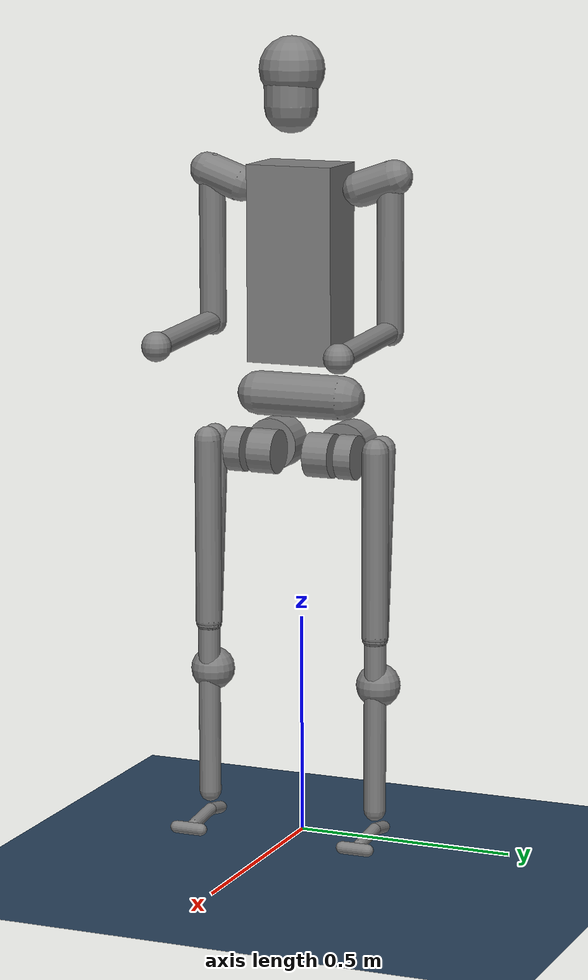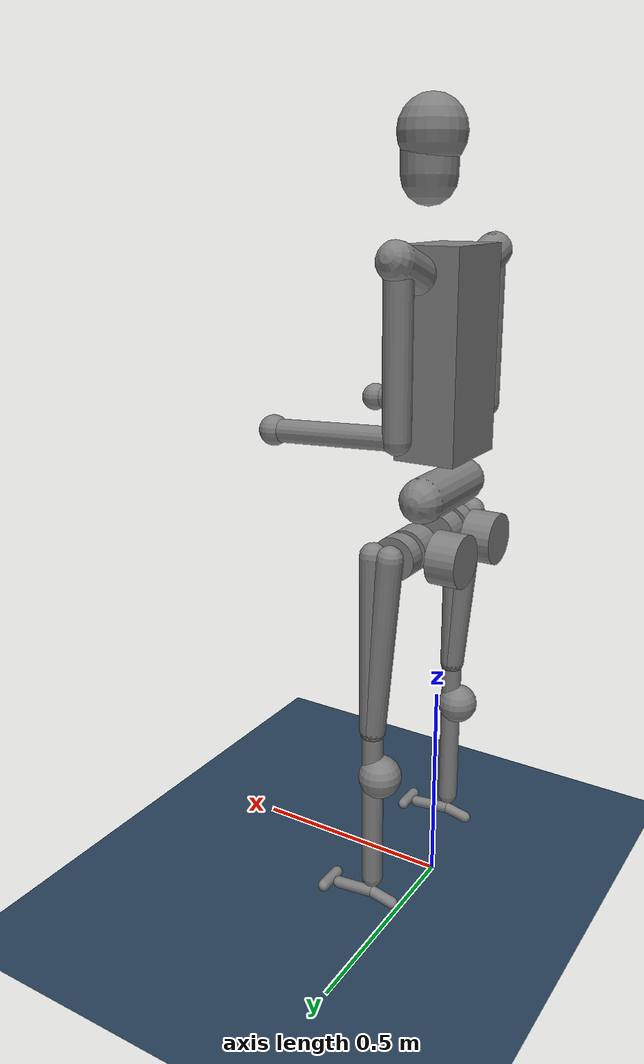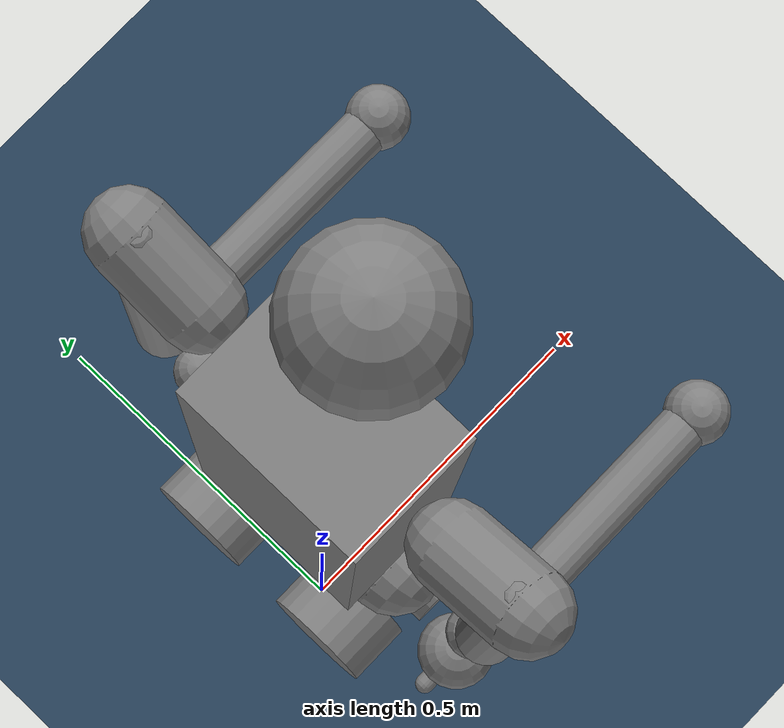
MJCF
<mujoco model="h1">
  <compiler autolimits="true" angle="radian"/>
  <size njmax="-1" nconmax="-1" nuser_actuator="-1"/>
  <visual>
    <global azimuth="160" elevation="-20"/>
    <headlight ambient="0.3 0.3 0.3" diffuse="0.6 0.6 0.6" specular="0 0 0"/>
    <rgba haze="0.15 0.25 0.35 1"/>
  </visual>
  <statistic meansize="0.05" extent="1.8" center="0 0 1"/>
  <default>
    <default class="/">
      <default class="h1">
        <joint limited="false" armature="0.1" damping="1"/>
        <site group="4" rgba="0.5 0.5 0.5 0.3" size="0.001"/>
        <motor ctrllimited="false"/>
        <default class="visual">
          <geom type="mesh" contype="0" conaffinity="0" group="1" material="black"/>
        </default>
        <default class="collision">
          <geom group="1" mass="0" density="0"/>
          <default class="foot">
            <geom type="capsule" size="0.014"/>
            <default class="foot1">
              <geom fromto="-0.035 0 -0.056 0.02 0 -0.045"/>
            </default>
            <default class="foot2">
              <geom fromto="0.02 0 -0.045 0.115 0 -0.056"/>
            </default>
            <default class="foot3">
              <geom fromto="0.14 -0.03 -0.056 0.14 0.03 -0.056"/>
            </default>
          </default>
        </default>
      </default>
    </default>
  </default>
  <asset>
    <texture name="//unnamed_texture_0" type="skybox" builtin="gradient" rgb1="0.3 0.5 0.7" rgb2="0 0 0" width="512" height="3072"/>
    <texture name="groundplane" type="2d" builtin="checker" rgb1="0.2 0.3 0.4" rgb2="0.1 0.2 0.3" mark="edge" markrgb="0.8 0.8 0.8" width="300" height="300"/>
    <material name="groundplane" class="/" texture="groundplane" texrepeat="5 5" texuniform="true" reflectance="0.2"/>
    <material name="black" class="/" rgba="0.1 0.1 0.1 1"/>
    <material name="white" class="/" rgba="1 1 1 1"/>
  </asset>
  <worldbody>
    <light name="//unnamed_light_0" class="/" directional="true" pos="0 0 3.5" dir="0 0 -1"/>
    <geom name="floor" class="/" type="plane" size="0 0 0.05" material="groundplane"/>
    <light name="//unnamed_light_1" class="/" mode="targetbodycom" target="torso_link" pos="2 0 2.5"/>
    <body name="pelvis" childclass="h1" pos="0 0 1.06">
      <inertial pos="-0.0002 4e-05 -0.04522" quat="0.4983 0.49945 -0.5005 0.50174" mass="5.39" diaginertia="0.049021 0.044582 0.0082462"/>
      <freejoint name="root"/>
      <body name="left_hip_yaw_link" pos="0 0.0875 -0.1742">
        <inertial pos="-0.04923 0.0001 0.0072" quat="0.69699 0.21919 0.23329 0.64167" mass="2.244" diaginertia="0.0030449 0.0029688 0.001892"/>
        <joint name="left_hip_yaw" axis="0 0 1" range="-0.43 0.43"/>
        <geom name="//unnamed_geom_1" class="collision" type="cylinder" size="0.06 0.035" pos="-0.067 0 0" quat="0.70712 0 0.70709 0"/>
        <body name="left_hip_roll_link" pos="0.039468 0 0">
          <inertial pos="-0.0058 -0.00319 -9e-05" quat="0.043824 0.70721 -0.072908 0.70187" mass="2.232" diaginertia="0.0024326 0.0022533 0.0020549"/>
          <joint name="left_hip_roll" axis="1 0 0" range="-0.43 0.43"/>
          <geom name="//unnamed_geom_2" class="collision" type="cylinder" size="0.05 0.03" pos="0 -0.02 0" quat="1 1 0 0"/>
          <body name="left_hip_pitch_link" pos="0 0.11536 0">
            <inertial pos="0.00746 -0.02346 -0.08193" quat="0.97983 0.051352 -0.016985 -0.19238" mass="4.152" diaginertia="0.08295 0.082146 0.0051091"/>
            <joint name="left_hip_pitch" axis="0 1 0" range="-1.57 1.57"/>
            <geom name="//unnamed_geom_3" class="collision" type="capsule" size="0.03" fromto="0.02 0 -0.4 -0.02 0 0.02"/>
            <geom name="//unnamed_geom_4" class="collision" type="capsule" size="0.03" fromto="0.02 0 -0.4 0.02 0 0.02"/>
            <geom name="//unnamed_geom_5" class="collision" type="cylinder" size="0.05 0.02" pos="0 -0.07 0" quat="1 1 0 0"/>
            <body name="left_knee_link" pos="0 0 -0.4">
              <inertial pos="-0.00136 -0.00512 -0.1384" quat="0.62613 -0.034227 -0.041628 0.77785" mass="1.721" diaginertia="0.012524 0.01231 0.0019428"/>
              <joint name="left_knee" axis="0 1 0" range="-0.26 2.05"/>
              <geom name="//unnamed_geom_6" class="collision" type="capsule" size="0.025" fromto="0.02 0 -0.4 0.02 0 0"/>
              <geom name="//unnamed_geom_7" class="collision" type="sphere" size="0.05" pos="0 0 -0.115"/>
              <body name="left_ankle_link" pos="0 0 -0.4">
                <inertial pos="0.06722 0.00015 -0.04497" quat="0.4891 0.5032 0.56578 0.43297" mass="0.446" diaginertia="0.0022085 0.0021896 0.0002142"/>
                <joint name="left_ankle" axis="0 1 0" range="-0.87 0.52"/>
                <geom name="//unnamed_geom_8" class="foot1"/>
                <geom name="//unnamed_geom_9" class="foot2"/>
                <geom name="//unnamed_geom_10" class="foot3"/>
              </body>
            </body>
          </body>
        </body>
      </body>
      <body name="right_hip_yaw_link" pos="0 -0.0875 -0.1742">
        <inertial pos="-0.04923 -0.0001 0.0072" quat="0.64167 0.23329 0.21919 0.69699" mass="2.244" diaginertia="0.0030449 0.0029688 0.001892"/>
        <joint name="right_hip_yaw" axis="0 0 1" range="-0.43 0.43"/>
        <geom name="//unnamed_geom_11" class="collision" type="cylinder" size="0.06 0.035" pos="-0.067 0 0" quat="0.70712 0 0.70709 0"/>
        <body name="right_hip_roll_link" pos="0.039468 0 0">
          <inertial pos="-0.0058 0.00319 -9e-05" quat="-0.043824 0.70721 0.072908 0.70187" mass="2.232" diaginertia="0.0024326 0.0022533 0.0020549"/>
          <joint name="right_hip_roll" axis="1 0 0" range="-0.43 0.43"/>
          <geom name="//unnamed_geom_12" class="collision" type="cylinder" size="0.05 0.03" pos="0 0.02 0" quat="1 1 0 0"/>
          <body name="right_hip_pitch_link" pos="0 -0.11536 0">
            <inertial pos="0.00746 0.02346 -0.08193" quat="0.97983 -0.051352 -0.016985 0.19238" mass="4.152" diaginertia="0.08295 0.082146 0.0051091"/>
            <joint name="right_hip_pitch" axis="0 1 0" range="-1.57 1.57"/>
            <geom name="//unnamed_geom_13" class="collision" type="capsule" size="0.03" fromto="0.02 0 -0.4 -0.02 0 0.02"/>
            <geom name="//unnamed_geom_14" class="collision" type="capsule" size="0.03" fromto="0.02 0 -0.4 0.02 0 0.02"/>
            <geom name="//unnamed_geom_15" class="collision" type="cylinder" size="0.05 0.02" pos="0 0.07 0" quat="1 1 0 0"/>
            <body name="right_knee_link" pos="0 0 -0.4">
              <inertial pos="-0.00136 0.00512 -0.1384" quat="0.77785 -0.041628 -0.034227 0.62613" mass="1.721" diaginertia="0.012524 0.01231 0.0019428"/>
              <joint name="right_knee" axis="0 1 0" range="-0.26 2.05"/>
              <geom name="//unnamed_geom_16" class="collision" type="capsule" size="0.025" fromto="0.02 0 -0.4 0.02 0 0"/>
              <geom name="//unnamed_geom_17" class="collision" type="sphere" size="0.05" pos="0 0 -0.115"/>
              <body name="right_ankle_link" pos="0 0 -0.4">
                <inertial pos="0.06722 -0.00015 -0.04497" quat="0.43297 0.56578 0.5032 0.4891" mass="0.446" diaginertia="0.0022085 0.0021896 0.0002142"/>
                <joint name="right_ankle" axis="0 1 0" range="-0.87 0.52"/>
                <geom name="//unnamed_geom_18" class="foot1"/>
                <geom name="//unnamed_geom_19" class="foot2"/>
                <geom name="//unnamed_geom_20" class="foot3"/>
              </body>
            </body>
          </body>
        </body>
      </body>
      <body name="torso_link">
        <inertial pos="0.000489 0.002797 0.20484" quat="0.99999 -0.0013081 -0.0028229 -0.003491" mass="17.789" diaginertia="0.48731 0.40963 0.12784"/>
        <geom name="head" class="collision" type="capsule" size="0.06" fromto="0.05 0 0.68 0.05 0 0.6"/>
        <geom name="helmet" class="collision" type="sphere" size="0.073" pos="0.045 0 0.68"/>
        <geom name="torso" class="collision" type="box" size="0.07 0.1 0.22" pos="0 0 0.25"/>
        <geom name="hip" class="collision" type="capsule" size="0.05" fromto="0 -0.1 -0.05 0 0.1 -0.05"/>
        <site name="imu" pos="-0.04452 -0.01891 0.27756"/>
        <body name="left_shoulder_pitch_link" pos="0.0055 0.15535 0.42999" quat="0.9763 0.21644 0 0">
          <inertial pos="0.005045 0.053657 -0.015715" quat="0.81486 0.57924 -0.020107 -0.0093649" mass="1.033" diaginertia="0.0012994 0.00098711 0.0008582"/>
          <body name="left_shoulder_roll_link" pos="-0.0055 0.0565 -0.0165" quat="0.9763 -0.21644 0 0">
            <inertial pos="0.000679 0.00115 -0.094076" quat="0.73249 0.0091718 0.076666 0.67638" mass="0.793" diaginertia="0.0017039 0.0015826 0.0010034"/>
            <geom name="left_shoulder" class="collision" type="capsule" size="0.04" fromto="0 0.01 0.008 0 -0.07 -0.02"/>
            <body name="left_shoulder_yaw_link" pos="0 0 -0.1343">
              <inertial pos="0.01365 0.002767 -0.16266" quat="0.70304 -0.033123 -0.047336 0.7088" mass="0.839" diaginertia="0.0040804 0.0037037 0.00062269"/>
              <geom name="//unnamed_geom_26" class="collision" type="capsule" size="0.03" fromto="0 0 0.15 0 0 -0.2"/>
              <body name="left_elbow_link" pos="0.0185 0 -0.198">
                <inertial pos="0.15908 -0.000144 -0.015776" quat="0.076523 0.72033 0.085312 0.6841" mass="0.669" diaginertia="0.0060183 0.0060058 0.0004083"/>
                <geom name="//unnamed_geom_27" class="collision" type="capsule" size="0.025" fromto="0 0 0 0.28 0 -0.015"/>
                <geom name="//unnamed_geom_28" class="collision" type="sphere" size="0.033" pos="0.28 0 -0.015"/>
              </body>
            </body>
          </body>
        </body>
        <body name="right_shoulder_pitch_link" pos="0.0055 -0.15535 0.42999" quat="0.9763 -0.21644 0 0">
          <inertial pos="0.005045 -0.053657 -0.015715" quat="0.57924 0.81486 0.0093649 0.020107" mass="1.033" diaginertia="0.0012994 0.00098711 0.0008582"/>
          <body name="right_shoulder_roll_link" pos="-0.0055 -0.0565 -0.0165" quat="0.9763 0.21644 0 0">
            <inertial pos="0.000679 -0.00115 -0.094076" quat="0.67638 0.076666 0.0091718 0.73249" mass="0.793" diaginertia="0.0017039 0.0015826 0.0010034"/>
            <geom name="right_shoulder" class="collision" type="capsule" size="0.04" fromto="0 -0.01 0.008 0 0.07 -0.02"/>
            <body name="right_shoulder_yaw_link" pos="0 0 -0.1343">
              <inertial pos="0.01365 -0.002767 -0.16266" quat="0.7088 -0.047336 -0.033123 0.70304" mass="0.839" diaginertia="0.0040804 0.0037037 0.00062269"/>
              <geom name="//unnamed_geom_30" class="collision" type="capsule" size="0.03" fromto="0 0 0.15 0 0 -0.2"/>
              <body name="right_elbow_link" pos="0.0185 0 -0.198">
                <inertial pos="0.15908 0.000144 -0.015776" quat="-0.076523 0.72033 -0.085312 0.6841" mass="0.669" diaginertia="0.0060183 0.0060058 0.0004083"/>
                <geom name="//unnamed_geom_31" class="collision" type="capsule" size="0.025" fromto="0 0 0 0.28 0 -0.015"/>
                <geom name="//unnamed_geom_32" class="collision" type="sphere" size="0.033" pos="0.28 0 -0.015"/>
              </body>
            </body>
          </body>
        </body>
      </body>
    </body>
  </worldbody>
  <contact>
    <exclude name="//unnamed_contact_0" body1="torso_link" body2="left_shoulder_roll_link"/>
    <exclude name="//unnamed_contact_1" body1="torso_link" body2="right_shoulder_roll_link"/>
  </contact>
  <actuator>
    <motor name="left_hip_yaw_motor" class="h1" ctrlrange="-200 200" joint="left_hip_yaw"/>
    <motor name="left_hip_roll_motor" class="h1" ctrlrange="-200 200" joint="left_hip_roll"/>
    <motor name="left_hip_pitch_motor" class="h1" ctrlrange="-200 200" joint="left_hip_pitch"/>
    <motor name="left_knee_motor" class="h1" ctrlrange="-300 300" joint="left_knee"/>
    <motor name="left_ankle_motor" class="h1" ctrlrange="-40 40" joint="left_ankle"/>
    <motor name="right_hip_yaw_motor" class="h1" ctrlrange="-200 200" joint="right_hip_yaw"/>
    <motor name="right_hip_roll_motor" class="h1" ctrlrange="-200 200" joint="right_hip_roll"/>
    <motor name="right_hip_pitch_motor" class="h1" ctrlrange="-200 200" joint="right_hip_pitch"/>
    <motor name="right_knee_motor" class="h1" ctrlrange="-300 300" joint="right_knee"/>
    <motor name="right_ankle_motor" class="h1" ctrlrange="-40 40" joint="right_ankle"/>
  </actuator>
</mujoco>
